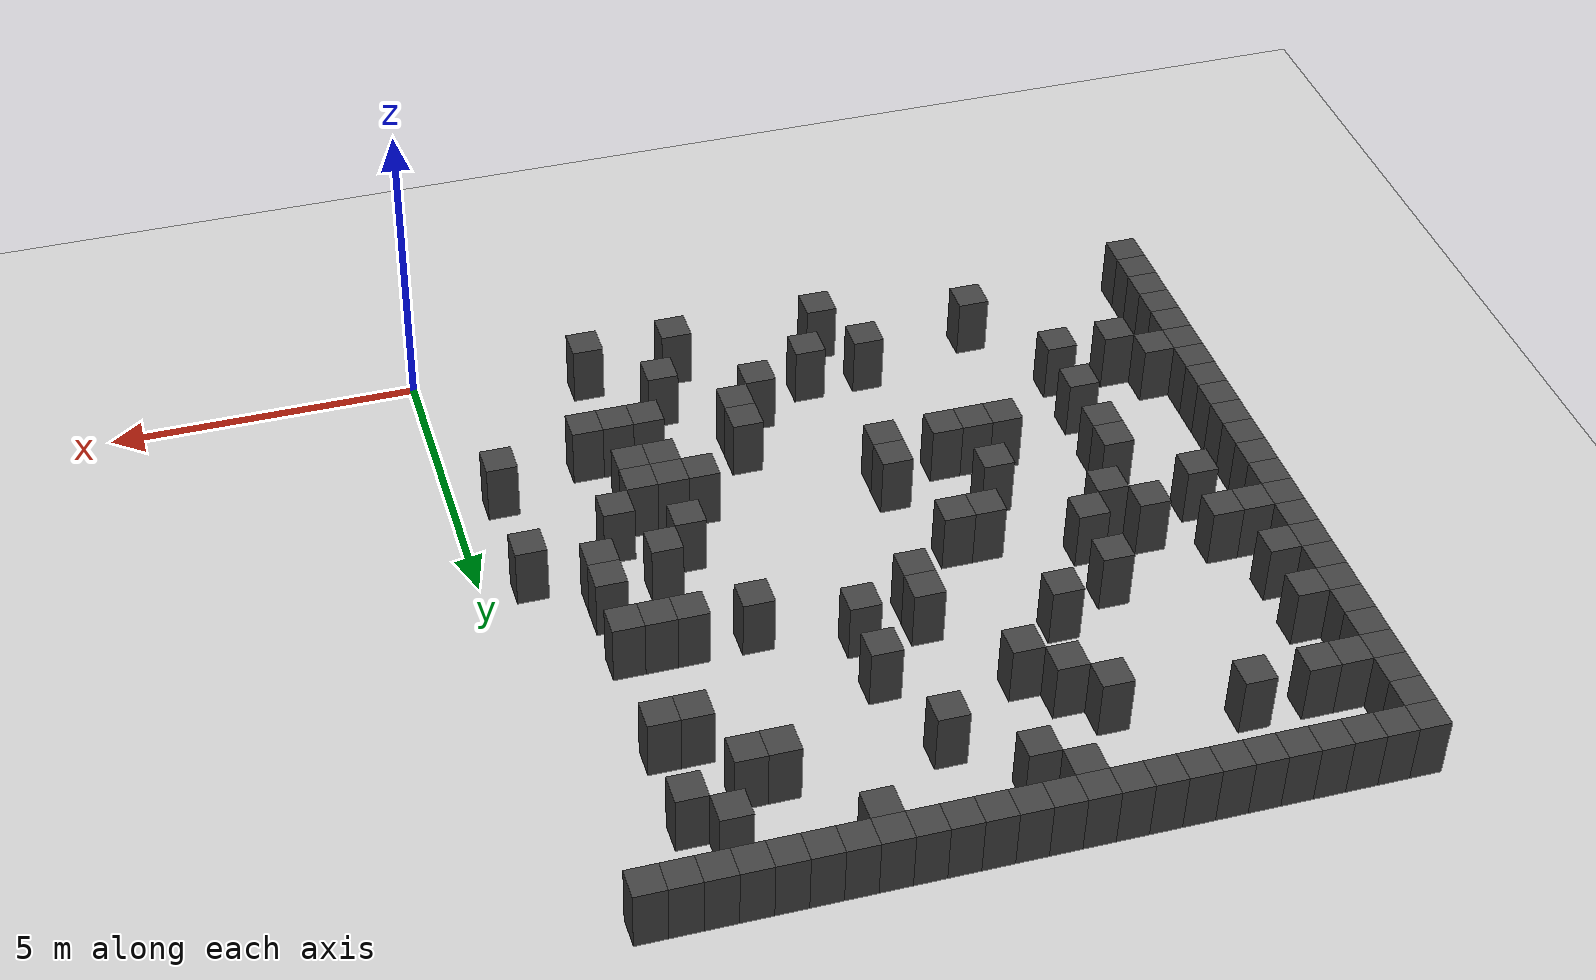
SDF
<sdf version="1.7">
 <world name="map_2375">
  <model name="ground_plane">
   <static>true</static>
   <link name="link">
    <collision name="collision">
     <geometry><plane><normal>0 0 1</normal><size>200 200</size></plane></geometry>
    </collision>
    <visual name="visual">
     <geometry><plane><normal>0 0 1</normal><size>200 200</size></plane></geometry>
     <material><ambient>0.8 0.8 0.8 1</ambient><diffuse>0.8 0.8 0.8 1</diffuse></material>
    </visual>
   </link>
  </model>
  <model name="maze_environment">
   <static>true</static>
   <link name="wall_0">
    <pose>-12.250 12.250 0.500 0 0 0</pose>
    <collision name="col"><geometry><box><size>0.5 0.5 1.0</size></box></geometry></collision>
    <visual name="vis">
     <geometry><box><size>0.5 0.5 1.0</size></box></geometry>
     <material><ambient>0.15 0.15 0.15 1</ambient><diffuse>0.25 0.25 0.25 1</diffuse></material>
    </visual>
   </link>
   <link name="wall_1">
    <pose>-11.750 12.250 0.500 0 0 0</pose>
    <collision name="col"><geometry><box><size>0.5 0.5 1.0</size></box></geometry></collision>
    <visual name="vis">
     <geometry><box><size>0.5 0.5 1.0</size></box></geometry>
     <material><ambient>0.15 0.15 0.15 1</ambient><diffuse>0.25 0.25 0.25 1</diffuse></material>
    </visual>
   </link>
   <link name="wall_2">
    <pose>-11.250 12.250 0.500 0 0 0</pose>
    <collision name="col"><geometry><box><size>0.5 0.5 1.0</size></box></geometry></collision>
    <visual name="vis">
     <geometry><box><size>0.5 0.5 1.0</size></box></geometry>
     <material><ambient>0.15 0.15 0.15 1</ambient><diffuse>0.25 0.25 0.25 1</diffuse></material>
    </visual>
   </link>
   <link name="wall_3">
    <pose>-10.750 12.250 0.500 0 0 0</pose>
    <collision name="col"><geometry><box><size>0.5 0.5 1.0</size></box></geometry></collision>
    <visual name="vis">
     <geometry><box><size>0.5 0.5 1.0</size></box></geometry>
     <material><ambient>0.15 0.15 0.15 1</ambient><diffuse>0.25 0.25 0.25 1</diffuse></material>
    </visual>
   </link>
   <link name="wall_4">
    <pose>-10.250 12.250 0.500 0 0 0</pose>
    <collision name="col"><geometry><box><size>0.5 0.5 1.0</size></box></geometry></collision>
    <visual name="vis">
     <geometry><box><size>0.5 0.5 1.0</size></box></geometry>
     <material><ambient>0.15 0.15 0.15 1</ambient><diffuse>0.25 0.25 0.25 1</diffuse></material>
    </visual>
   </link>
   <link name="wall_5">
    <pose>-9.750 12.250 0.500 0 0 0</pose>
    <collision name="col"><geometry><box><size>0.5 0.5 1.0</size></box></geometry></collision>
    <visual name="vis">
     <geometry><box><size>0.5 0.5 1.0</size></box></geometry>
     <material><ambient>0.15 0.15 0.15 1</ambient><diffuse>0.25 0.25 0.25 1</diffuse></material>
    </visual>
   </link>
   <link name="wall_6">
    <pose>-9.250 12.250 0.500 0 0 0</pose>
    <collision name="col"><geometry><box><size>0.5 0.5 1.0</size></box></geometry></collision>
    <visual name="vis">
     <geometry><box><size>0.5 0.5 1.0</size></box></geometry>
     <material><ambient>0.15 0.15 0.15 1</ambient><diffuse>0.25 0.25 0.25 1</diffuse></material>
    </visual>
   </link>
   <link name="wall_7">
    <pose>-8.750 12.250 0.500 0 0 0</pose>
    <collision name="col"><geometry><box><size>0.5 0.5 1.0</size></box></geometry></collision>
    <visual name="vis">
     <geometry><box><size>0.5 0.5 1.0</size></box></geometry>
     <material><ambient>0.15 0.15 0.15 1</ambient><diffuse>0.25 0.25 0.25 1</diffuse></material>
    </visual>
   </link>
   <link name="wall_8">
    <pose>-8.250 12.250 0.500 0 0 0</pose>
    <collision name="col"><geometry><box><size>0.5 0.5 1.0</size></box></geometry></collision>
    <visual name="vis">
     <geometry><box><size>0.5 0.5 1.0</size></box></geometry>
     <material><ambient>0.15 0.15 0.15 1</ambient><diffuse>0.25 0.25 0.25 1</diffuse></material>
    </visual>
   </link>
   <link name="wall_9">
    <pose>-7.750 12.250 0.500 0 0 0</pose>
    <collision name="col"><geometry><box><size>0.5 0.5 1.0</size></box></geometry></collision>
    <visual name="vis">
     <geometry><box><size>0.5 0.5 1.0</size></box></geometry>
     <material><ambient>0.15 0.15 0.15 1</ambient><diffuse>0.25 0.25 0.25 1</diffuse></material>
    </visual>
   </link>
   <link name="wall_10">
    <pose>-7.250 12.250 0.500 0 0 0</pose>
    <collision name="col"><geometry><box><size>0.5 0.5 1.0</size></box></geometry></collision>
    <visual name="vis">
     <geometry><box><size>0.5 0.5 1.0</size></box></geometry>
     <material><ambient>0.15 0.15 0.15 1</ambient><diffuse>0.25 0.25 0.25 1</diffuse></material>
    </visual>
   </link>
   <link name="wall_11">
    <pose>-6.750 12.250 0.500 0 0 0</pose>
    <collision name="col"><geometry><box><size>0.5 0.5 1.0</size></box></geometry></collision>
    <visual name="vis">
     <geometry><box><size>0.5 0.5 1.0</size></box></geometry>
     <material><ambient>0.15 0.15 0.15 1</ambient><diffuse>0.25 0.25 0.25 1</diffuse></material>
    </visual>
   </link>
   <link name="wall_12">
    <pose>-6.250 12.250 0.500 0 0 0</pose>
    <collision name="col"><geometry><box><size>0.5 0.5 1.0</size></box></geometry></collision>
    <visual name="vis">
     <geometry><box><size>0.5 0.5 1.0</size></box></geometry>
     <material><ambient>0.15 0.15 0.15 1</ambient><diffuse>0.25 0.25 0.25 1</diffuse></material>
    </visual>
   </link>
   <link name="wall_13">
    <pose>-5.750 12.250 0.500 0 0 0</pose>
    <collision name="col"><geometry><box><size>0.5 0.5 1.0</size></box></geometry></collision>
    <visual name="vis">
     <geometry><box><size>0.5 0.5 1.0</size></box></geometry>
     <material><ambient>0.15 0.15 0.15 1</ambient><diffuse>0.25 0.25 0.25 1</diffuse></material>
    </visual>
   </link>
   <link name="wall_14">
    <pose>-5.250 12.250 0.500 0 0 0</pose>
    <collision name="col"><geometry><box><size>0.5 0.5 1.0</size></box></geometry></collision>
    <visual name="vis">
     <geometry><box><size>0.5 0.5 1.0</size></box></geometry>
     <material><ambient>0.15 0.15 0.15 1</ambient><diffuse>0.25 0.25 0.25 1</diffuse></material>
    </visual>
   </link>
   <link name="wall_15">
    <pose>-4.750 12.250 0.500 0 0 0</pose>
    <collision name="col"><geometry><box><size>0.5 0.5 1.0</size></box></geometry></collision>
    <visual name="vis">
     <geometry><box><size>0.5 0.5 1.0</size></box></geometry>
     <material><ambient>0.15 0.15 0.15 1</ambient><diffuse>0.25 0.25 0.25 1</diffuse></material>
    </visual>
   </link>
   <link name="wall_16">
    <pose>-4.250 12.250 0.500 0 0 0</pose>
    <collision name="col"><geometry><box><size>0.5 0.5 1.0</size></box></geometry></collision>
    <visual name="vis">
     <geometry><box><size>0.5 0.5 1.0</size></box></geometry>
     <material><ambient>0.15 0.15 0.15 1</ambient><diffuse>0.25 0.25 0.25 1</diffuse></material>
    </visual>
   </link>
   <link name="wall_17">
    <pose>-3.750 12.250 0.500 0 0 0</pose>
    <collision name="col"><geometry><box><size>0.5 0.5 1.0</size></box></geometry></collision>
    <visual name="vis">
     <geometry><box><size>0.5 0.5 1.0</size></box></geometry>
     <material><ambient>0.15 0.15 0.15 1</ambient><diffuse>0.25 0.25 0.25 1</diffuse></material>
    </visual>
   </link>
   <link name="wall_18">
    <pose>-3.250 12.250 0.500 0 0 0</pose>
    <collision name="col"><geometry><box><size>0.5 0.5 1.0</size></box></geometry></collision>
    <visual name="vis">
     <geometry><box><size>0.5 0.5 1.0</size></box></geometry>
     <material><ambient>0.15 0.15 0.15 1</ambient><diffuse>0.25 0.25 0.25 1</diffuse></material>
    </visual>
   </link>
   <link name="wall_19">
    <pose>-2.750 12.250 0.500 0 0 0</pose>
    <collision name="col"><geometry><box><size>0.5 0.5 1.0</size></box></geometry></collision>
    <visual name="vis">
     <geometry><box><size>0.5 0.5 1.0</size></box></geometry>
     <material><ambient>0.15 0.15 0.15 1</ambient><diffuse>0.25 0.25 0.25 1</diffuse></material>
    </visual>
   </link>
   <link name="wall_20">
    <pose>-2.250 12.250 0.500 0 0 0</pose>
    <collision name="col"><geometry><box><size>0.5 0.5 1.0</size></box></geometry></collision>
    <visual name="vis">
     <geometry><box><size>0.5 0.5 1.0</size></box></geometry>
     <material><ambient>0.15 0.15 0.15 1</ambient><diffuse>0.25 0.25 0.25 1</diffuse></material>
    </visual>
   </link>
   <link name="wall_21">
    <pose>-1.750 12.250 0.500 0 0 0</pose>
    <collision name="col"><geometry><box><size>0.5 0.5 1.0</size></box></geometry></collision>
    <visual name="vis">
     <geometry><box><size>0.5 0.5 1.0</size></box></geometry>
     <material><ambient>0.15 0.15 0.15 1</ambient><diffuse>0.25 0.25 0.25 1</diffuse></material>
    </visual>
   </link>
   <link name="wall_22">
    <pose>-1.250 12.250 0.500 0 0 0</pose>
    <collision name="col"><geometry><box><size>0.5 0.5 1.0</size></box></geometry></collision>
    <visual name="vis">
     <geometry><box><size>0.5 0.5 1.0</size></box></geometry>
     <material><ambient>0.15 0.15 0.15 1</ambient><diffuse>0.25 0.25 0.25 1</diffuse></material>
    </visual>
   </link>
   <link name="wall_23">
    <pose>-0.750 12.250 0.500 0 0 0</pose>
    <collision name="col"><geometry><box><size>0.5 0.5 1.0</size></box></geometry></collision>
    <visual name="vis">
     <geometry><box><size>0.5 0.5 1.0</size></box></geometry>
     <material><ambient>0.15 0.15 0.15 1</ambient><diffuse>0.25 0.25 0.25 1</diffuse></material>
    </visual>
   </link>
   <link name="wall_50">
    <pose>-12.250 11.750 0.500 0 0 0</pose>
    <collision name="col"><geometry><box><size>0.5 0.5 1.0</size></box></geometry></collision>
    <visual name="vis">
     <geometry><box><size>0.5 0.5 1.0</size></box></geometry>
     <material><ambient>0.15 0.15 0.15 1</ambient><diffuse>0.25 0.25 0.25 1</diffuse></material>
    </visual>
   </link>
   <link name="wall_51">
    <pose>-7.250 11.750 0.500 0 0 0</pose>
    <collision name="col"><geometry><box><size>0.5 0.5 1.0</size></box></geometry></collision>
    <visual name="vis">
     <geometry><box><size>0.5 0.5 1.0</size></box></geometry>
     <material><ambient>0.15 0.15 0.15 1</ambient><diffuse>0.25 0.25 0.25 1</diffuse></material>
    </visual>
   </link>
   <link name="wall_52">
    <pose>-4.250 11.750 0.500 0 0 0</pose>
    <collision name="col"><geometry><box><size>0.5 0.5 1.0</size></box></geometry></collision>
    <visual name="vis">
     <geometry><box><size>0.5 0.5 1.0</size></box></geometry>
     <material><ambient>0.15 0.15 0.15 1</ambient><diffuse>0.25 0.25 0.25 1</diffuse></material>
    </visual>
   </link>
   <link name="wall_58">
    <pose>-12.250 11.250 0.500 0 0 0</pose>
    <collision name="col"><geometry><box><size>0.5 0.5 1.0</size></box></geometry></collision>
    <visual name="vis">
     <geometry><box><size>0.5 0.5 1.0</size></box></geometry>
     <material><ambient>0.15 0.15 0.15 1</ambient><diffuse>0.25 0.25 0.25 1</diffuse></material>
    </visual>
   </link>
   <link name="wall_59">
    <pose>-6.750 11.250 0.500 0 0 0</pose>
    <collision name="col"><geometry><box><size>0.5 0.5 1.0</size></box></geometry></collision>
    <visual name="vis">
     <geometry><box><size>0.5 0.5 1.0</size></box></geometry>
     <material><ambient>0.15 0.15 0.15 1</ambient><diffuse>0.25 0.25 0.25 1</diffuse></material>
    </visual>
   </link>
   <link name="wall_60">
    <pose>-2.250 11.250 0.500 0 0 0</pose>
    <collision name="col"><geometry><box><size>0.5 0.5 1.0</size></box></geometry></collision>
    <visual name="vis">
     <geometry><box><size>0.5 0.5 1.0</size></box></geometry>
     <material><ambient>0.15 0.15 0.15 1</ambient><diffuse>0.25 0.25 0.25 1</diffuse></material>
    </visual>
   </link>
   <link name="wall_63">
    <pose>-12.250 10.750 0.500 0 0 0</pose>
    <collision name="col"><geometry><box><size>0.5 0.5 1.0</size></box></geometry></collision>
    <visual name="vis">
     <geometry><box><size>0.5 0.5 1.0</size></box></geometry>
     <material><ambient>0.15 0.15 0.15 1</ambient><diffuse>0.25 0.25 0.25 1</diffuse></material>
    </visual>
   </link>
   <link name="wall_64">
    <pose>-11.750 10.750 0.500 0 0 0</pose>
    <collision name="col"><geometry><box><size>0.5 0.5 1.0</size></box></geometry></collision>
    <visual name="vis">
     <geometry><box><size>0.5 0.5 1.0</size></box></geometry>
     <material><ambient>0.15 0.15 0.15 1</ambient><diffuse>0.25 0.25 0.25 1</diffuse></material>
    </visual>
   </link>
   <link name="wall_65">
    <pose>-11.250 10.750 0.500 0 0 0</pose>
    <collision name="col"><geometry><box><size>0.5 0.5 1.0</size></box></geometry></collision>
    <visual name="vis">
     <geometry><box><size>0.5 0.5 1.0</size></box></geometry>
     <material><ambient>0.15 0.15 0.15 1</ambient><diffuse>0.25 0.25 0.25 1</diffuse></material>
    </visual>
   </link>
   <link name="wall_66">
    <pose>-10.250 10.750 0.500 0 0 0</pose>
    <collision name="col"><geometry><box><size>0.5 0.5 1.0</size></box></geometry></collision>
    <visual name="vis">
     <geometry><box><size>0.5 0.5 1.0</size></box></geometry>
     <material><ambient>0.15 0.15 0.15 1</ambient><diffuse>0.25 0.25 0.25 1</diffuse></material>
    </visual>
   </link>
   <link name="wall_67">
    <pose>-1.750 10.750 0.500 0 0 0</pose>
    <collision name="col"><geometry><box><size>0.5 0.5 1.0</size></box></geometry></collision>
    <visual name="vis">
     <geometry><box><size>0.5 0.5 1.0</size></box></geometry>
     <material><ambient>0.15 0.15 0.15 1</ambient><diffuse>0.25 0.25 0.25 1</diffuse></material>
    </visual>
   </link>
   <link name="wall_73">
    <pose>-12.250 10.250 0.500 0 0 0</pose>
    <collision name="col"><geometry><box><size>0.5 0.5 1.0</size></box></geometry></collision>
    <visual name="vis">
     <geometry><box><size>0.5 0.5 1.0</size></box></geometry>
     <material><ambient>0.15 0.15 0.15 1</ambient><diffuse>0.25 0.25 0.25 1</diffuse></material>
    </visual>
   </link>
   <link name="wall_74">
    <pose>-8.250 10.250 0.500 0 0 0</pose>
    <collision name="col"><geometry><box><size>0.5 0.5 1.0</size></box></geometry></collision>
    <visual name="vis">
     <geometry><box><size>0.5 0.5 1.0</size></box></geometry>
     <material><ambient>0.15 0.15 0.15 1</ambient><diffuse>0.25 0.25 0.25 1</diffuse></material>
    </visual>
   </link>
   <link name="wall_75">
    <pose>-5.750 10.250 0.500 0 0 0</pose>
    <collision name="col"><geometry><box><size>0.5 0.5 1.0</size></box></geometry></collision>
    <visual name="vis">
     <geometry><box><size>0.5 0.5 1.0</size></box></geometry>
     <material><ambient>0.15 0.15 0.15 1</ambient><diffuse>0.25 0.25 0.25 1</diffuse></material>
    </visual>
   </link>
   <link name="wall_76">
    <pose>-3.250 10.250 0.500 0 0 0</pose>
    <collision name="col"><geometry><box><size>0.5 0.5 1.0</size></box></geometry></collision>
    <visual name="vis">
     <geometry><box><size>0.5 0.5 1.0</size></box></geometry>
     <material><ambient>0.15 0.15 0.15 1</ambient><diffuse>0.25 0.25 0.25 1</diffuse></material>
    </visual>
   </link>
   <link name="wall_77">
    <pose>-2.750 10.250 0.500 0 0 0</pose>
    <collision name="col"><geometry><box><size>0.5 0.5 1.0</size></box></geometry></collision>
    <visual name="vis">
     <geometry><box><size>0.5 0.5 1.0</size></box></geometry>
     <material><ambient>0.15 0.15 0.15 1</ambient><diffuse>0.25 0.25 0.25 1</diffuse></material>
    </visual>
   </link>
   <link name="wall_84">
    <pose>-12.250 9.750 0.500 0 0 0</pose>
    <collision name="col"><geometry><box><size>0.5 0.5 1.0</size></box></geometry></collision>
    <visual name="vis">
     <geometry><box><size>0.5 0.5 1.0</size></box></geometry>
     <material><ambient>0.15 0.15 0.15 1</ambient><diffuse>0.25 0.25 0.25 1</diffuse></material>
    </visual>
   </link>
   <link name="wall_85">
    <pose>-7.750 9.750 0.500 0 0 0</pose>
    <collision name="col"><geometry><box><size>0.5 0.5 1.0</size></box></geometry></collision>
    <visual name="vis">
     <geometry><box><size>0.5 0.5 1.0</size></box></geometry>
     <material><ambient>0.15 0.15 0.15 1</ambient><diffuse>0.25 0.25 0.25 1</diffuse></material>
    </visual>
   </link>
   <link name="wall_91">
    <pose>-12.250 9.250 0.500 0 0 0</pose>
    <collision name="col"><geometry><box><size>0.5 0.5 1.0</size></box></geometry></collision>
    <visual name="vis">
     <geometry><box><size>0.5 0.5 1.0</size></box></geometry>
     <material><ambient>0.15 0.15 0.15 1</ambient><diffuse>0.25 0.25 0.25 1</diffuse></material>
    </visual>
   </link>
   <link name="wall_92">
    <pose>-11.750 9.250 0.500 0 0 0</pose>
    <collision name="col"><geometry><box><size>0.5 0.5 1.0</size></box></geometry></collision>
    <visual name="vis">
     <geometry><box><size>0.5 0.5 1.0</size></box></geometry>
     <material><ambient>0.15 0.15 0.15 1</ambient><diffuse>0.25 0.25 0.25 1</diffuse></material>
    </visual>
   </link>
   <link name="wall_93">
    <pose>-7.250 9.250 0.500 0 0 0</pose>
    <collision name="col"><geometry><box><size>0.5 0.5 1.0</size></box></geometry></collision>
    <visual name="vis">
     <geometry><box><size>0.5 0.5 1.0</size></box></geometry>
     <material><ambient>0.15 0.15 0.15 1</ambient><diffuse>0.25 0.25 0.25 1</diffuse></material>
    </visual>
   </link>
   <link name="wall_94">
    <pose>-2.250 9.250 0.500 0 0 0</pose>
    <collision name="col"><geometry><box><size>0.5 0.5 1.0</size></box></geometry></collision>
    <visual name="vis">
     <geometry><box><size>0.5 0.5 1.0</size></box></geometry>
     <material><ambient>0.15 0.15 0.15 1</ambient><diffuse>0.25 0.25 0.25 1</diffuse></material>
    </visual>
   </link>
   <link name="wall_95">
    <pose>-1.750 9.250 0.500 0 0 0</pose>
    <collision name="col"><geometry><box><size>0.5 0.5 1.0</size></box></geometry></collision>
    <visual name="vis">
     <geometry><box><size>0.5 0.5 1.0</size></box></geometry>
     <material><ambient>0.15 0.15 0.15 1</ambient><diffuse>0.25 0.25 0.25 1</diffuse></material>
    </visual>
   </link>
   <link name="wall_99">
    <pose>-12.250 8.750 0.500 0 0 0</pose>
    <collision name="col"><geometry><box><size>0.5 0.5 1.0</size></box></geometry></collision>
    <visual name="vis">
     <geometry><box><size>0.5 0.5 1.0</size></box></geometry>
     <material><ambient>0.15 0.15 0.15 1</ambient><diffuse>0.25 0.25 0.25 1</diffuse></material>
    </visual>
   </link>
   <link name="wall_100">
    <pose>-5.250 8.750 0.500 0 0 0</pose>
    <collision name="col"><geometry><box><size>0.5 0.5 1.0</size></box></geometry></collision>
    <visual name="vis">
     <geometry><box><size>0.5 0.5 1.0</size></box></geometry>
     <material><ambient>0.15 0.15 0.15 1</ambient><diffuse>0.25 0.25 0.25 1</diffuse></material>
    </visual>
   </link>
   <link name="wall_104">
    <pose>-12.250 8.250 0.500 0 0 0</pose>
    <collision name="col"><geometry><box><size>0.5 0.5 1.0</size></box></geometry></collision>
    <visual name="vis">
     <geometry><box><size>0.5 0.5 1.0</size></box></geometry>
     <material><ambient>0.15 0.15 0.15 1</ambient><diffuse>0.25 0.25 0.25 1</diffuse></material>
    </visual>
   </link>
   <link name="wall_105">
    <pose>-11.750 8.250 0.500 0 0 0</pose>
    <collision name="col"><geometry><box><size>0.5 0.5 1.0</size></box></geometry></collision>
    <visual name="vis">
     <geometry><box><size>0.5 0.5 1.0</size></box></geometry>
     <material><ambient>0.15 0.15 0.15 1</ambient><diffuse>0.25 0.25 0.25 1</diffuse></material>
    </visual>
   </link>
   <link name="wall_106">
    <pose>-8.250 8.250 0.500 0 0 0</pose>
    <collision name="col"><geometry><box><size>0.5 0.5 1.0</size></box></geometry></collision>
    <visual name="vis">
     <geometry><box><size>0.5 0.5 1.0</size></box></geometry>
     <material><ambient>0.15 0.15 0.15 1</ambient><diffuse>0.25 0.25 0.25 1</diffuse></material>
    </visual>
   </link>
   <link name="wall_112">
    <pose>-12.250 7.750 0.500 0 0 0</pose>
    <collision name="col"><geometry><box><size>0.5 0.5 1.0</size></box></geometry></collision>
    <visual name="vis">
     <geometry><box><size>0.5 0.5 1.0</size></box></geometry>
     <material><ambient>0.15 0.15 0.15 1</ambient><diffuse>0.25 0.25 0.25 1</diffuse></material>
    </visual>
   </link>
   <link name="wall_113">
    <pose>-9.250 7.750 0.500 0 0 0</pose>
    <collision name="col"><geometry><box><size>0.5 0.5 1.0</size></box></geometry></collision>
    <visual name="vis">
     <geometry><box><size>0.5 0.5 1.0</size></box></geometry>
     <material><ambient>0.15 0.15 0.15 1</ambient><diffuse>0.25 0.25 0.25 1</diffuse></material>
    </visual>
   </link>
   <link name="wall_114">
    <pose>-6.250 7.750 0.500 0 0 0</pose>
    <collision name="col"><geometry><box><size>0.5 0.5 1.0</size></box></geometry></collision>
    <visual name="vis">
     <geometry><box><size>0.5 0.5 1.0</size></box></geometry>
     <material><ambient>0.15 0.15 0.15 1</ambient><diffuse>0.25 0.25 0.25 1</diffuse></material>
    </visual>
   </link>
   <link name="wall_115">
    <pose>-5.250 7.750 0.500 0 0 0</pose>
    <collision name="col"><geometry><box><size>0.5 0.5 1.0</size></box></geometry></collision>
    <visual name="vis">
     <geometry><box><size>0.5 0.5 1.0</size></box></geometry>
     <material><ambient>0.15 0.15 0.15 1</ambient><diffuse>0.25 0.25 0.25 1</diffuse></material>
    </visual>
   </link>
   <link name="wall_117">
    <pose>-12.250 7.250 0.500 0 0 0</pose>
    <collision name="col"><geometry><box><size>0.5 0.5 1.0</size></box></geometry></collision>
    <visual name="vis">
     <geometry><box><size>0.5 0.5 1.0</size></box></geometry>
     <material><ambient>0.15 0.15 0.15 1</ambient><diffuse>0.25 0.25 0.25 1</diffuse></material>
    </visual>
   </link>
   <link name="wall_118">
    <pose>-11.750 7.250 0.500 0 0 0</pose>
    <collision name="col"><geometry><box><size>0.5 0.5 1.0</size></box></geometry></collision>
    <visual name="vis">
     <geometry><box><size>0.5 0.5 1.0</size></box></geometry>
     <material><ambient>0.15 0.15 0.15 1</ambient><diffuse>0.25 0.25 0.25 1</diffuse></material>
    </visual>
   </link>
   <link name="wall_119">
    <pose>-11.250 7.250 0.500 0 0 0</pose>
    <collision name="col"><geometry><box><size>0.5 0.5 1.0</size></box></geometry></collision>
    <visual name="vis">
     <geometry><box><size>0.5 0.5 1.0</size></box></geometry>
     <material><ambient>0.15 0.15 0.15 1</ambient><diffuse>0.25 0.25 0.25 1</diffuse></material>
    </visual>
   </link>
   <link name="wall_120">
    <pose>-6.250 7.250 0.500 0 0 0</pose>
    <collision name="col"><geometry><box><size>0.5 0.5 1.0</size></box></geometry></collision>
    <visual name="vis">
     <geometry><box><size>0.5 0.5 1.0</size></box></geometry>
     <material><ambient>0.15 0.15 0.15 1</ambient><diffuse>0.25 0.25 0.25 1</diffuse></material>
    </visual>
   </link>
   <link name="wall_121">
    <pose>-3.750 7.250 0.500 0 0 0</pose>
    <collision name="col"><geometry><box><size>0.5 0.5 1.0</size></box></geometry></collision>
    <visual name="vis">
     <geometry><box><size>0.5 0.5 1.0</size></box></geometry>
     <material><ambient>0.15 0.15 0.15 1</ambient><diffuse>0.25 0.25 0.25 1</diffuse></material>
    </visual>
   </link>
   <link name="wall_122">
    <pose>-2.750 7.250 0.500 0 0 0</pose>
    <collision name="col"><geometry><box><size>0.5 0.5 1.0</size></box></geometry></collision>
    <visual name="vis">
     <geometry><box><size>0.5 0.5 1.0</size></box></geometry>
     <material><ambient>0.15 0.15 0.15 1</ambient><diffuse>0.25 0.25 0.25 1</diffuse></material>
    </visual>
   </link>
   <link name="wall_123">
    <pose>-2.250 7.250 0.500 0 0 0</pose>
    <collision name="col"><geometry><box><size>0.5 0.5 1.0</size></box></geometry></collision>
    <visual name="vis">
     <geometry><box><size>0.5 0.5 1.0</size></box></geometry>
     <material><ambient>0.15 0.15 0.15 1</ambient><diffuse>0.25 0.25 0.25 1</diffuse></material>
    </visual>
   </link>
   <link name="wall_124">
    <pose>-1.750 7.250 0.500 0 0 0</pose>
    <collision name="col"><geometry><box><size>0.5 0.5 1.0</size></box></geometry></collision>
    <visual name="vis">
     <geometry><box><size>0.5 0.5 1.0</size></box></geometry>
     <material><ambient>0.15 0.15 0.15 1</ambient><diffuse>0.25 0.25 0.25 1</diffuse></material>
    </visual>
   </link>
   <link name="wall_129">
    <pose>-12.250 6.750 0.500 0 0 0</pose>
    <collision name="col"><geometry><box><size>0.5 0.5 1.0</size></box></geometry></collision>
    <visual name="vis">
     <geometry><box><size>0.5 0.5 1.0</size></box></geometry>
     <material><ambient>0.15 0.15 0.15 1</ambient><diffuse>0.25 0.25 0.25 1</diffuse></material>
    </visual>
   </link>
   <link name="wall_130">
    <pose>-10.250 6.750 0.500 0 0 0</pose>
    <collision name="col"><geometry><box><size>0.5 0.5 1.0</size></box></geometry></collision>
    <visual name="vis">
     <geometry><box><size>0.5 0.5 1.0</size></box></geometry>
     <material><ambient>0.15 0.15 0.15 1</ambient><diffuse>0.25 0.25 0.25 1</diffuse></material>
    </visual>
   </link>
   <link name="wall_131">
    <pose>-9.250 6.750 0.500 0 0 0</pose>
    <collision name="col"><geometry><box><size>0.5 0.5 1.0</size></box></geometry></collision>
    <visual name="vis">
     <geometry><box><size>0.5 0.5 1.0</size></box></geometry>
     <material><ambient>0.15 0.15 0.15 1</ambient><diffuse>0.25 0.25 0.25 1</diffuse></material>
    </visual>
   </link>
   <link name="wall_136">
    <pose>-12.250 6.250 0.500 0 0 0</pose>
    <collision name="col"><geometry><box><size>0.5 0.5 1.0</size></box></geometry></collision>
    <visual name="vis">
     <geometry><box><size>0.5 0.5 1.0</size></box></geometry>
     <material><ambient>0.15 0.15 0.15 1</ambient><diffuse>0.25 0.25 0.25 1</diffuse></material>
    </visual>
   </link>
   <link name="wall_137">
    <pose>-11.250 6.250 0.500 0 0 0</pose>
    <collision name="col"><geometry><box><size>0.5 0.5 1.0</size></box></geometry></collision>
    <visual name="vis">
     <geometry><box><size>0.5 0.5 1.0</size></box></geometry>
     <material><ambient>0.15 0.15 0.15 1</ambient><diffuse>0.25 0.25 0.25 1</diffuse></material>
    </visual>
   </link>
   <link name="wall_138">
    <pose>-9.750 6.250 0.500 0 0 0</pose>
    <collision name="col"><geometry><box><size>0.5 0.5 1.0</size></box></geometry></collision>
    <visual name="vis">
     <geometry><box><size>0.5 0.5 1.0</size></box></geometry>
     <material><ambient>0.15 0.15 0.15 1</ambient><diffuse>0.25 0.25 0.25 1</diffuse></material>
    </visual>
   </link>
   <link name="wall_139">
    <pose>-7.750 6.250 0.500 0 0 0</pose>
    <collision name="col"><geometry><box><size>0.5 0.5 1.0</size></box></geometry></collision>
    <visual name="vis">
     <geometry><box><size>0.5 0.5 1.0</size></box></geometry>
     <material><ambient>0.15 0.15 0.15 1</ambient><diffuse>0.25 0.25 0.25 1</diffuse></material>
    </visual>
   </link>
   <link name="wall_140">
    <pose>-7.250 6.250 0.500 0 0 0</pose>
    <collision name="col"><geometry><box><size>0.5 0.5 1.0</size></box></geometry></collision>
    <visual name="vis">
     <geometry><box><size>0.5 0.5 1.0</size></box></geometry>
     <material><ambient>0.15 0.15 0.15 1</ambient><diffuse>0.25 0.25 0.25 1</diffuse></material>
    </visual>
   </link>
   <link name="wall_141">
    <pose>-1.750 6.250 0.500 0 0 0</pose>
    <collision name="col"><geometry><box><size>0.5 0.5 1.0</size></box></geometry></collision>
    <visual name="vis">
     <geometry><box><size>0.5 0.5 1.0</size></box></geometry>
     <material><ambient>0.15 0.15 0.15 1</ambient><diffuse>0.25 0.25 0.25 1</diffuse></material>
    </visual>
   </link>
   <link name="wall_145">
    <pose>-12.250 5.750 0.500 0 0 0</pose>
    <collision name="col"><geometry><box><size>0.5 0.5 1.0</size></box></geometry></collision>
    <visual name="vis">
     <geometry><box><size>0.5 0.5 1.0</size></box></geometry>
     <material><ambient>0.15 0.15 0.15 1</ambient><diffuse>0.25 0.25 0.25 1</diffuse></material>
    </visual>
   </link>
   <link name="wall_146">
    <pose>-2.750 5.750 0.500 0 0 0</pose>
    <collision name="col"><geometry><box><size>0.5 0.5 1.0</size></box></geometry></collision>
    <visual name="vis">
     <geometry><box><size>0.5 0.5 1.0</size></box></geometry>
     <material><ambient>0.15 0.15 0.15 1</ambient><diffuse>0.25 0.25 0.25 1</diffuse></material>
    </visual>
   </link>
   <link name="wall_147">
    <pose>-1.750 5.750 0.500 0 0 0</pose>
    <collision name="col"><geometry><box><size>0.5 0.5 1.0</size></box></geometry></collision>
    <visual name="vis">
     <geometry><box><size>0.5 0.5 1.0</size></box></geometry>
     <material><ambient>0.15 0.15 0.15 1</ambient><diffuse>0.25 0.25 0.25 1</diffuse></material>
    </visual>
   </link>
   <link name="wall_152">
    <pose>-12.250 5.250 0.500 0 0 0</pose>
    <collision name="col"><geometry><box><size>0.5 0.5 1.0</size></box></geometry></collision>
    <visual name="vis">
     <geometry><box><size>0.5 0.5 1.0</size></box></geometry>
     <material><ambient>0.15 0.15 0.15 1</ambient><diffuse>0.25 0.25 0.25 1</diffuse></material>
    </visual>
   </link>
   <link name="wall_153">
    <pose>-10.250 5.250 0.500 0 0 0</pose>
    <collision name="col"><geometry><box><size>0.5 0.5 1.0</size></box></geometry></collision>
    <visual name="vis">
     <geometry><box><size>0.5 0.5 1.0</size></box></geometry>
     <material><ambient>0.15 0.15 0.15 1</ambient><diffuse>0.25 0.25 0.25 1</diffuse></material>
    </visual>
   </link>
   <link name="wall_154">
    <pose>-8.250 5.250 0.500 0 0 0</pose>
    <collision name="col"><geometry><box><size>0.5 0.5 1.0</size></box></geometry></collision>
    <visual name="vis">
     <geometry><box><size>0.5 0.5 1.0</size></box></geometry>
     <material><ambient>0.15 0.15 0.15 1</ambient><diffuse>0.25 0.25 0.25 1</diffuse></material>
    </visual>
   </link>
   <link name="wall_155">
    <pose>-3.250 5.250 0.500 0 0 0</pose>
    <collision name="col"><geometry><box><size>0.5 0.5 1.0</size></box></geometry></collision>
    <visual name="vis">
     <geometry><box><size>0.5 0.5 1.0</size></box></geometry>
     <material><ambient>0.15 0.15 0.15 1</ambient><diffuse>0.25 0.25 0.25 1</diffuse></material>
    </visual>
   </link>
   <link name="wall_156">
    <pose>-0.750 5.250 0.500 0 0 0</pose>
    <collision name="col"><geometry><box><size>0.5 0.5 1.0</size></box></geometry></collision>
    <visual name="vis">
     <geometry><box><size>0.5 0.5 1.0</size></box></geometry>
     <material><ambient>0.15 0.15 0.15 1</ambient><diffuse>0.25 0.25 0.25 1</diffuse></material>
    </visual>
   </link>
   <link name="wall_162">
    <pose>-12.250 4.750 0.500 0 0 0</pose>
    <collision name="col"><geometry><box><size>0.5 0.5 1.0</size></box></geometry></collision>
    <visual name="vis">
     <geometry><box><size>0.5 0.5 1.0</size></box></geometry>
     <material><ambient>0.15 0.15 0.15 1</ambient><diffuse>0.25 0.25 0.25 1</diffuse></material>
    </visual>
   </link>
   <link name="wall_163">
    <pose>-10.250 4.750 0.500 0 0 0</pose>
    <collision name="col"><geometry><box><size>0.5 0.5 1.0</size></box></geometry></collision>
    <visual name="vis">
     <geometry><box><size>0.5 0.5 1.0</size></box></geometry>
     <material><ambient>0.15 0.15 0.15 1</ambient><diffuse>0.25 0.25 0.25 1</diffuse></material>
    </visual>
   </link>
   <link name="wall_164">
    <pose>-6.750 4.750 0.500 0 0 0</pose>
    <collision name="col"><geometry><box><size>0.5 0.5 1.0</size></box></geometry></collision>
    <visual name="vis">
     <geometry><box><size>0.5 0.5 1.0</size></box></geometry>
     <material><ambient>0.15 0.15 0.15 1</ambient><diffuse>0.25 0.25 0.25 1</diffuse></material>
    </visual>
   </link>
   <link name="wall_165">
    <pose>-2.250 4.750 0.500 0 0 0</pose>
    <collision name="col"><geometry><box><size>0.5 0.5 1.0</size></box></geometry></collision>
    <visual name="vis">
     <geometry><box><size>0.5 0.5 1.0</size></box></geometry>
     <material><ambient>0.15 0.15 0.15 1</ambient><diffuse>0.25 0.25 0.25 1</diffuse></material>
    </visual>
   </link>
   <link name="wall_170">
    <pose>-12.250 4.250 0.500 0 0 0</pose>
    <collision name="col"><geometry><box><size>0.5 0.5 1.0</size></box></geometry></collision>
    <visual name="vis">
     <geometry><box><size>0.5 0.5 1.0</size></box></geometry>
     <material><ambient>0.15 0.15 0.15 1</ambient><diffuse>0.25 0.25 0.25 1</diffuse></material>
    </visual>
   </link>
   <link name="wall_171">
    <pose>-8.750 4.250 0.500 0 0 0</pose>
    <collision name="col"><geometry><box><size>0.5 0.5 1.0</size></box></geometry></collision>
    <visual name="vis">
     <geometry><box><size>0.5 0.5 1.0</size></box></geometry>
     <material><ambient>0.15 0.15 0.15 1</ambient><diffuse>0.25 0.25 0.25 1</diffuse></material>
    </visual>
   </link>
   <link name="wall_172">
    <pose>-8.250 4.250 0.500 0 0 0</pose>
    <collision name="col"><geometry><box><size>0.5 0.5 1.0</size></box></geometry></collision>
    <visual name="vis">
     <geometry><box><size>0.5 0.5 1.0</size></box></geometry>
     <material><ambient>0.15 0.15 0.15 1</ambient><diffuse>0.25 0.25 0.25 1</diffuse></material>
    </visual>
   </link>
   <link name="wall_173">
    <pose>-7.750 4.250 0.500 0 0 0</pose>
    <collision name="col"><geometry><box><size>0.5 0.5 1.0</size></box></geometry></collision>
    <visual name="vis">
     <geometry><box><size>0.5 0.5 1.0</size></box></geometry>
     <material><ambient>0.15 0.15 0.15 1</ambient><diffuse>0.25 0.25 0.25 1</diffuse></material>
    </visual>
   </link>
   <link name="wall_174">
    <pose>-6.750 4.250 0.500 0 0 0</pose>
    <collision name="col"><geometry><box><size>0.5 0.5 1.0</size></box></geometry></collision>
    <visual name="vis">
     <geometry><box><size>0.5 0.5 1.0</size></box></geometry>
     <material><ambient>0.15 0.15 0.15 1</ambient><diffuse>0.25 0.25 0.25 1</diffuse></material>
    </visual>
   </link>
   <link name="wall_175">
    <pose>-3.750 4.250 0.500 0 0 0</pose>
    <collision name="col"><geometry><box><size>0.5 0.5 1.0</size></box></geometry></collision>
    <visual name="vis">
     <geometry><box><size>0.5 0.5 1.0</size></box></geometry>
     <material><ambient>0.15 0.15 0.15 1</ambient><diffuse>0.25 0.25 0.25 1</diffuse></material>
    </visual>
   </link>
   <link name="wall_176">
    <pose>-3.250 4.250 0.500 0 0 0</pose>
    <collision name="col"><geometry><box><size>0.5 0.5 1.0</size></box></geometry></collision>
    <visual name="vis">
     <geometry><box><size>0.5 0.5 1.0</size></box></geometry>
     <material><ambient>0.15 0.15 0.15 1</ambient><diffuse>0.25 0.25 0.25 1</diffuse></material>
    </visual>
   </link>
   <link name="wall_177">
    <pose>-2.750 4.250 0.500 0 0 0</pose>
    <collision name="col"><geometry><box><size>0.5 0.5 1.0</size></box></geometry></collision>
    <visual name="vis">
     <geometry><box><size>0.5 0.5 1.0</size></box></geometry>
     <material><ambient>0.15 0.15 0.15 1</ambient><diffuse>0.25 0.25 0.25 1</diffuse></material>
    </visual>
   </link>
   <link name="wall_181">
    <pose>-12.250 3.750 0.500 0 0 0</pose>
    <collision name="col"><geometry><box><size>0.5 0.5 1.0</size></box></geometry></collision>
    <visual name="vis">
     <geometry><box><size>0.5 0.5 1.0</size></box></geometry>
     <material><ambient>0.15 0.15 0.15 1</ambient><diffuse>0.25 0.25 0.25 1</diffuse></material>
    </visual>
   </link>
   <link name="wall_182">
    <pose>-10.250 3.750 0.500 0 0 0</pose>
    <collision name="col"><geometry><box><size>0.5 0.5 1.0</size></box></geometry></collision>
    <visual name="vis">
     <geometry><box><size>0.5 0.5 1.0</size></box></geometry>
     <material><ambient>0.15 0.15 0.15 1</ambient><diffuse>0.25 0.25 0.25 1</diffuse></material>
    </visual>
   </link>
   <link name="wall_183">
    <pose>-3.250 3.750 0.500 0 0 0</pose>
    <collision name="col"><geometry><box><size>0.5 0.5 1.0</size></box></geometry></collision>
    <visual name="vis">
     <geometry><box><size>0.5 0.5 1.0</size></box></geometry>
     <material><ambient>0.15 0.15 0.15 1</ambient><diffuse>0.25 0.25 0.25 1</diffuse></material>
    </visual>
   </link>
   <link name="wall_184">
    <pose>-2.750 3.750 0.500 0 0 0</pose>
    <collision name="col"><geometry><box><size>0.5 0.5 1.0</size></box></geometry></collision>
    <visual name="vis">
     <geometry><box><size>0.5 0.5 1.0</size></box></geometry>
     <material><ambient>0.15 0.15 0.15 1</ambient><diffuse>0.25 0.25 0.25 1</diffuse></material>
    </visual>
   </link>
   <link name="wall_186">
    <pose>-12.250 3.250 0.500 0 0 0</pose>
    <collision name="col"><geometry><box><size>0.5 0.5 1.0</size></box></geometry></collision>
    <visual name="vis">
     <geometry><box><size>0.5 0.5 1.0</size></box></geometry>
     <material><ambient>0.15 0.15 0.15 1</ambient><diffuse>0.25 0.25 0.25 1</diffuse></material>
    </visual>
   </link>
   <link name="wall_187">
    <pose>-11.750 3.250 0.500 0 0 0</pose>
    <collision name="col"><geometry><box><size>0.5 0.5 1.0</size></box></geometry></collision>
    <visual name="vis">
     <geometry><box><size>0.5 0.5 1.0</size></box></geometry>
     <material><ambient>0.15 0.15 0.15 1</ambient><diffuse>0.25 0.25 0.25 1</diffuse></material>
    </visual>
   </link>
   <link name="wall_188">
    <pose>-4.750 3.250 0.500 0 0 0</pose>
    <collision name="col"><geometry><box><size>0.5 0.5 1.0</size></box></geometry></collision>
    <visual name="vis">
     <geometry><box><size>0.5 0.5 1.0</size></box></geometry>
     <material><ambient>0.15 0.15 0.15 1</ambient><diffuse>0.25 0.25 0.25 1</diffuse></material>
    </visual>
   </link>
   <link name="wall_189">
    <pose>-0.750 3.250 0.500 0 0 0</pose>
    <collision name="col"><geometry><box><size>0.5 0.5 1.0</size></box></geometry></collision>
    <visual name="vis">
     <geometry><box><size>0.5 0.5 1.0</size></box></geometry>
     <material><ambient>0.15 0.15 0.15 1</ambient><diffuse>0.25 0.25 0.25 1</diffuse></material>
    </visual>
   </link>
   <link name="wall_193">
    <pose>-12.250 2.750 0.500 0 0 0</pose>
    <collision name="col"><geometry><box><size>0.5 0.5 1.0</size></box></geometry></collision>
    <visual name="vis">
     <geometry><box><size>0.5 0.5 1.0</size></box></geometry>
     <material><ambient>0.15 0.15 0.15 1</ambient><diffuse>0.25 0.25 0.25 1</diffuse></material>
    </visual>
   </link>
   <link name="wall_194">
    <pose>-11.250 2.750 0.500 0 0 0</pose>
    <collision name="col"><geometry><box><size>0.5 0.5 1.0</size></box></geometry></collision>
    <visual name="vis">
     <geometry><box><size>0.5 0.5 1.0</size></box></geometry>
     <material><ambient>0.15 0.15 0.15 1</ambient><diffuse>0.25 0.25 0.25 1</diffuse></material>
    </visual>
   </link>
   <link name="wall_195">
    <pose>-10.250 2.750 0.500 0 0 0</pose>
    <collision name="col"><geometry><box><size>0.5 0.5 1.0</size></box></geometry></collision>
    <visual name="vis">
     <geometry><box><size>0.5 0.5 1.0</size></box></geometry>
     <material><ambient>0.15 0.15 0.15 1</ambient><diffuse>0.25 0.25 0.25 1</diffuse></material>
    </visual>
   </link>
   <link name="wall_196">
    <pose>-4.750 2.750 0.500 0 0 0</pose>
    <collision name="col"><geometry><box><size>0.5 0.5 1.0</size></box></geometry></collision>
    <visual name="vis">
     <geometry><box><size>0.5 0.5 1.0</size></box></geometry>
     <material><ambient>0.15 0.15 0.15 1</ambient><diffuse>0.25 0.25 0.25 1</diffuse></material>
    </visual>
   </link>
   <link name="wall_197">
    <pose>-3.250 2.750 0.500 0 0 0</pose>
    <collision name="col"><geometry><box><size>0.5 0.5 1.0</size></box></geometry></collision>
    <visual name="vis">
     <geometry><box><size>0.5 0.5 1.0</size></box></geometry>
     <material><ambient>0.15 0.15 0.15 1</ambient><diffuse>0.25 0.25 0.25 1</diffuse></material>
    </visual>
   </link>
   <link name="wall_198">
    <pose>-2.750 2.750 0.500 0 0 0</pose>
    <collision name="col"><geometry><box><size>0.5 0.5 1.0</size></box></geometry></collision>
    <visual name="vis">
     <geometry><box><size>0.5 0.5 1.0</size></box></geometry>
     <material><ambient>0.15 0.15 0.15 1</ambient><diffuse>0.25 0.25 0.25 1</diffuse></material>
    </visual>
   </link>
   <link name="wall_199">
    <pose>-2.250 2.750 0.500 0 0 0</pose>
    <collision name="col"><geometry><box><size>0.5 0.5 1.0</size></box></geometry></collision>
    <visual name="vis">
     <geometry><box><size>0.5 0.5 1.0</size></box></geometry>
     <material><ambient>0.15 0.15 0.15 1</ambient><diffuse>0.25 0.25 0.25 1</diffuse></material>
    </visual>
   </link>
   <link name="wall_204">
    <pose>-12.250 2.250 0.500 0 0 0</pose>
    <collision name="col"><geometry><box><size>0.5 0.5 1.0</size></box></geometry></collision>
    <visual name="vis">
     <geometry><box><size>0.5 0.5 1.0</size></box></geometry>
     <material><ambient>0.15 0.15 0.15 1</ambient><diffuse>0.25 0.25 0.25 1</diffuse></material>
    </visual>
   </link>
   <link name="wall_205">
    <pose>-5.250 2.250 0.500 0 0 0</pose>
    <collision name="col"><geometry><box><size>0.5 0.5 1.0</size></box></geometry></collision>
    <visual name="vis">
     <geometry><box><size>0.5 0.5 1.0</size></box></geometry>
     <material><ambient>0.15 0.15 0.15 1</ambient><diffuse>0.25 0.25 0.25 1</diffuse></material>
    </visual>
   </link>
   <link name="wall_208">
    <pose>-12.250 1.750 0.500 0 0 0</pose>
    <collision name="col"><geometry><box><size>0.5 0.5 1.0</size></box></geometry></collision>
    <visual name="vis">
     <geometry><box><size>0.5 0.5 1.0</size></box></geometry>
     <material><ambient>0.15 0.15 0.15 1</ambient><diffuse>0.25 0.25 0.25 1</diffuse></material>
    </visual>
   </link>
   <link name="wall_209">
    <pose>-7.250 1.750 0.500 0 0 0</pose>
    <collision name="col"><geometry><box><size>0.5 0.5 1.0</size></box></geometry></collision>
    <visual name="vis">
     <geometry><box><size>0.5 0.5 1.0</size></box></geometry>
     <material><ambient>0.15 0.15 0.15 1</ambient><diffuse>0.25 0.25 0.25 1</diffuse></material>
    </visual>
   </link>
   <link name="wall_210">
    <pose>-6.250 1.750 0.500 0 0 0</pose>
    <collision name="col"><geometry><box><size>0.5 0.5 1.0</size></box></geometry></collision>
    <visual name="vis">
     <geometry><box><size>0.5 0.5 1.0</size></box></geometry>
     <material><ambient>0.15 0.15 0.15 1</ambient><diffuse>0.25 0.25 0.25 1</diffuse></material>
    </visual>
   </link>
   <link name="wall_211">
    <pose>-3.750 1.750 0.500 0 0 0</pose>
    <collision name="col"><geometry><box><size>0.5 0.5 1.0</size></box></geometry></collision>
    <visual name="vis">
     <geometry><box><size>0.5 0.5 1.0</size></box></geometry>
     <material><ambient>0.15 0.15 0.15 1</ambient><diffuse>0.25 0.25 0.25 1</diffuse></material>
    </visual>
   </link>
   <link name="wall_217">
    <pose>-12.250 1.250 0.500 0 0 0</pose>
    <collision name="col"><geometry><box><size>0.5 0.5 1.0</size></box></geometry></collision>
    <visual name="vis">
     <geometry><box><size>0.5 0.5 1.0</size></box></geometry>
     <material><ambient>0.15 0.15 0.15 1</ambient><diffuse>0.25 0.25 0.25 1</diffuse></material>
    </visual>
   </link>
   <link name="wall_218">
    <pose>-9.250 1.250 0.500 0 0 0</pose>
    <collision name="col"><geometry><box><size>0.5 0.5 1.0</size></box></geometry></collision>
    <visual name="vis">
     <geometry><box><size>0.5 0.5 1.0</size></box></geometry>
     <material><ambient>0.15 0.15 0.15 1</ambient><diffuse>0.25 0.25 0.25 1</diffuse></material>
    </visual>
   </link>
   <link name="wall_223">
    <pose>-12.250 0.750 0.500 0 0 0</pose>
    <collision name="col"><geometry><box><size>0.5 0.5 1.0</size></box></geometry></collision>
    <visual name="vis">
     <geometry><box><size>0.5 0.5 1.0</size></box></geometry>
     <material><ambient>0.15 0.15 0.15 1</ambient><diffuse>0.25 0.25 0.25 1</diffuse></material>
    </visual>
   </link>
   <link name="wall_224">
    <pose>-6.750 0.750 0.500 0 0 0</pose>
    <collision name="col"><geometry><box><size>0.5 0.5 1.0</size></box></geometry></collision>
    <visual name="vis">
     <geometry><box><size>0.5 0.5 1.0</size></box></geometry>
     <material><ambient>0.15 0.15 0.15 1</ambient><diffuse>0.25 0.25 0.25 1</diffuse></material>
    </visual>
   </link>
   <link name="wall_225">
    <pose>-4.250 0.750 0.500 0 0 0</pose>
    <collision name="col"><geometry><box><size>0.5 0.5 1.0</size></box></geometry></collision>
    <visual name="vis">
     <geometry><box><size>0.5 0.5 1.0</size></box></geometry>
     <material><ambient>0.15 0.15 0.15 1</ambient><diffuse>0.25 0.25 0.25 1</diffuse></material>
    </visual>
   </link>
   <link name="wall_226">
    <pose>-2.750 0.750 0.500 0 0 0</pose>
    <collision name="col"><geometry><box><size>0.5 0.5 1.0</size></box></geometry></collision>
    <visual name="vis">
     <geometry><box><size>0.5 0.5 1.0</size></box></geometry>
     <material><ambient>0.15 0.15 0.15 1</ambient><diffuse>0.25 0.25 0.25 1</diffuse></material>
    </visual>
   </link>
   <link name="start_zone">
    <pose>-11.750 11.750 0.005 0 0 0</pose>
    <visual name="vis">
     <geometry><box><size>0.45 0.45 0.01</size></box></geometry>
     <material>
      <ambient>0.0 1.0 0.0 1</ambient>
      <diffuse>0.0 1.0 0.0 1</diffuse>
      <emissive>0.00 0.60 0.00 1</emissive>
     </material>
    </visual>
   </link>
  </model>
 </world>
</sdf>
